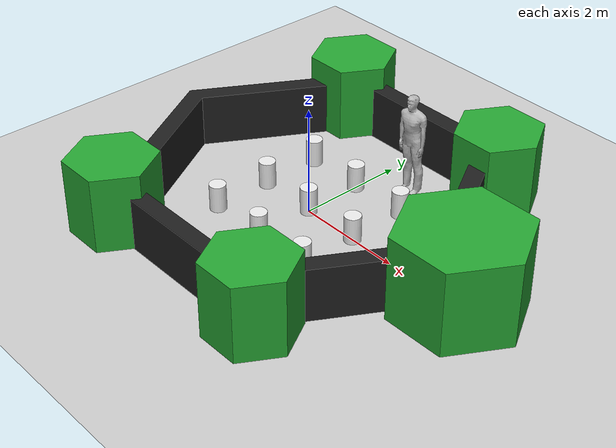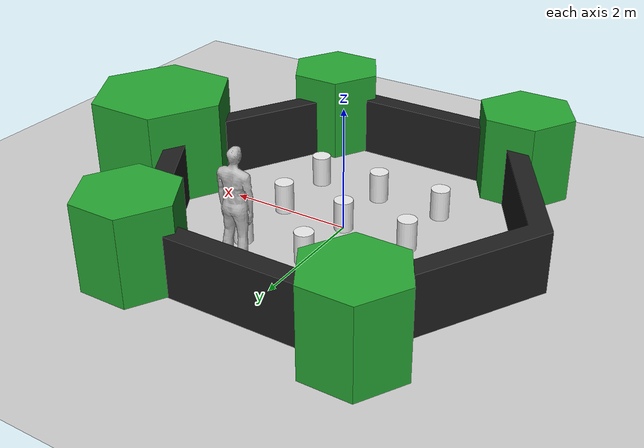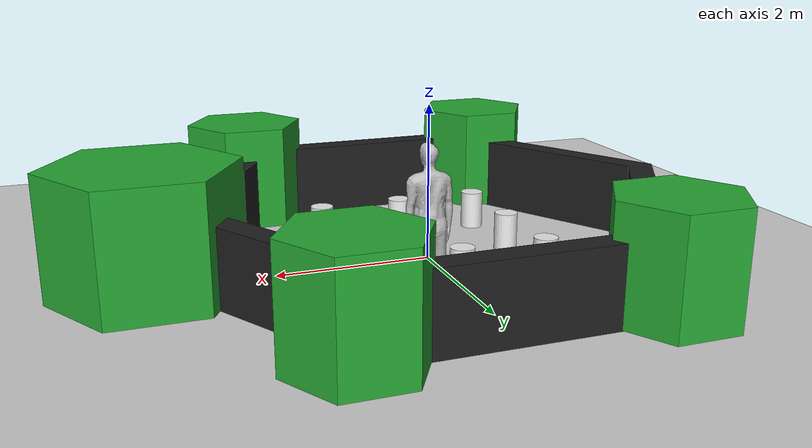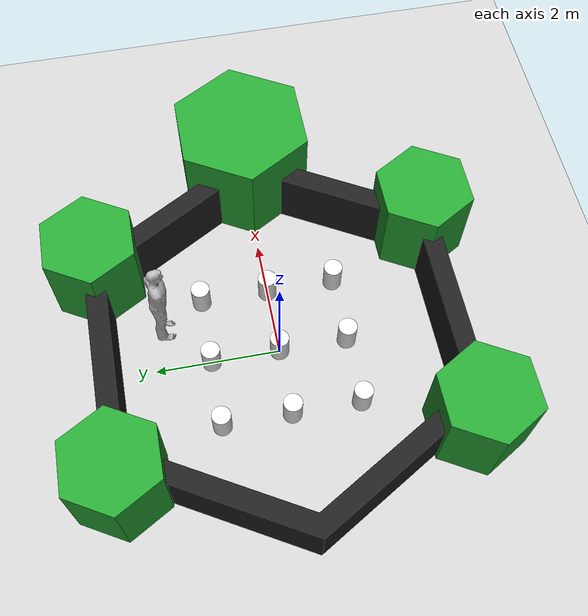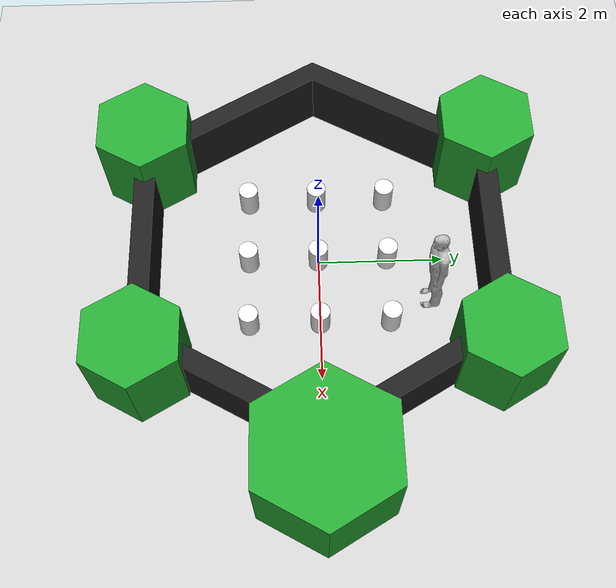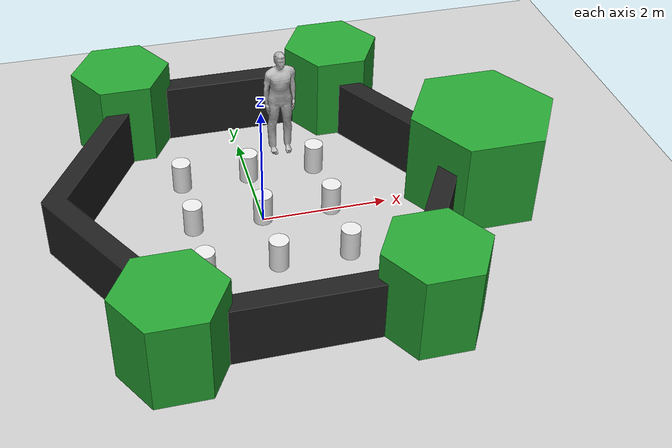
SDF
<sdf version="1.6">
 <world name="default">
  <light name="sun" type="directional">
   <pose>0 0 10 0 -0 0</pose>
   <diffuse>0.8 0.8 0.8 1</diffuse>
   <specular>0.2 0.2 0.2 1</specular>
   <attenuation>
    <range>1000</range>
    <constant>0.9</constant>
    <linear>0.01</linear>
    <quadratic>0.001</quadratic>
   </attenuation>
   <direction>-0.5 0.1 -0.9</direction>
  </light>
  <model name="ground_plane">
   <static>1</static>
   <link name="link">
    <collision name="collision">
     <geometry><plane><normal>0 0 1</normal><size>100 100</size></plane></geometry>
     <surface><friction><ode><mu>100</mu><mu2>50</mu2></ode></friction></surface>
    </collision>
    <visual name="visual">
     <cast_shadows>0</cast_shadows>
     <geometry><plane><normal>0 0 1</normal><size>100 100</size></plane></geometry>
     <material>
      <script><uri>file://media/materials/scripts/gazebo.material</uri><name>Gazebo/Grey</name></script>
     </material>
    </visual>
   </link>
  </model>
  <physics name="default_physics" default="0" type="ode">
   <real_time_update_rate>1000</real_time_update_rate>
   <max_step_size>0.001</max_step_size>
   <real_time_factor>1</real_time_factor>
   <ode>
    <solver>
     <type>quick</type>
     <iters>150</iters>
     <precon_iters>0</precon_iters>
     <sor>1.4</sor>
     <use_dynamic_moi_rescaling>1</use_dynamic_moi_rescaling>
    </solver>
    <constraints>
     <cfm>1e-05</cfm>
     <erp>0.2</erp>
     <contact_max_correcting_vel>2000</contact_max_correcting_vel>
     <contact_surface_layer>0.01</contact_surface_layer>
    </constraints>
   </ode>
  </physics>
  <model name="ros_symbol">
   <static>1</static>
   <link name="symbol">
    <collision name="one_one">
     <pose>-1.1 -1.1 0.25 0 -0 0</pose>
     <geometry><cylinder><radius>0.15</radius><length>0.5</length></cylinder></geometry>
    </collision>
    <visual name="one_one">
     <pose>-1.1 -1.1 0.25 0 -0 0</pose>
     <geometry><cylinder><radius>0.15</radius><length>0.5</length></cylinder></geometry>
     <material>
      <script><uri>file://media/materials/scripts/gazebo.material</uri><name>Gazebo/White</name></script>
     </material>
    </visual>
    <collision name="one_two">
     <pose>-1.1 0 0.25 0 -0 0</pose>
     <geometry><cylinder><radius>0.15</radius><length>0.5</length></cylinder></geometry>
    </collision>
    <visual name="one_two">
     <pose>-1.1 0 0.25 0 -0 0</pose>
     <geometry><cylinder><radius>0.15</radius><length>0.5</length></cylinder></geometry>
     <material>
      <script><uri>file://media/materials/scripts/gazebo.material</uri><name>Gazebo/White</name></script>
     </material>
    </visual>
    <collision name="one_three">
     <pose>-1.1 1.1 0.25 0 -0 0</pose>
     <geometry><cylinder><radius>0.15</radius><length>0.5</length></cylinder></geometry>
    </collision>
    <visual name="one_three">
     <pose>-1.1 1.1 0.25 0 -0 0</pose>
     <geometry><cylinder><radius>0.15</radius><length>0.5</length></cylinder></geometry>
     <material>
      <script><uri>file://media/materials/scripts/gazebo.material</uri><name>Gazebo/White</name></script>
     </material>
    </visual>
    <collision name="two_one">
     <pose>0 -1.1 0.25 0 -0 0</pose>
     <geometry><cylinder><radius>0.15</radius><length>0.5</length></cylinder></geometry>
    </collision>
    <visual name="two_one">
     <pose>0 -1.1 0.25 0 -0 0</pose>
     <geometry><cylinder><radius>0.15</radius><length>0.5</length></cylinder></geometry>
     <material>
      <script><uri>file://media/materials/scripts/gazebo.material</uri><name>Gazebo/White</name></script>
     </material>
    </visual>
    <collision name="two_two">
     <pose>0 0 0.25 0 -0 0</pose>
     <geometry><cylinder><radius>0.15</radius><length>0.5</length></cylinder></geometry>
    </collision>
    <visual name="two_two">
     <pose>0 0 0.25 0 -0 0</pose>
     <geometry><cylinder><radius>0.15</radius><length>0.5</length></cylinder></geometry>
     <material>
      <script><uri>file://media/materials/scripts/gazebo.material</uri><name>Gazebo/White</name></script>
     </material>
    </visual>
    <collision name="two_three">
     <pose>0 1.1 0.25 0 -0 0</pose>
     <geometry><cylinder><radius>0.15</radius><length>0.5</length></cylinder></geometry>
    </collision>
    <visual name="two_three">
     <pose>0 1.1 0.25 0 -0 0</pose>
     <geometry><cylinder><radius>0.15</radius><length>0.5</length></cylinder></geometry>
     <material>
      <script><uri>file://media/materials/scripts/gazebo.material</uri><name>Gazebo/White</name></script>
     </material>
    </visual>
    <collision name="three_one">
     <pose>1.1 -1.1 0.25 0 -0 0</pose>
     <geometry><cylinder><radius>0.15</radius><length>0.5</length></cylinder></geometry>
    </collision>
    <visual name="three_one">
     <pose>1.1 -1.1 0.25 0 -0 0</pose>
     <geometry><cylinder><radius>0.15</radius><length>0.5</length></cylinder></geometry>
     <material>
      <script><uri>file://media/materials/scripts/gazebo.material</uri><name>Gazebo/White</name></script>
     </material>
    </visual>
    <collision name="three_two">
     <pose>1.1 0 0.25 0 -0 0</pose>
     <geometry><cylinder><radius>0.15</radius><length>0.5</length></cylinder></geometry>
    </collision>
    <visual name="three_two">
     <pose>1.1 0 0.25 0 -0 0</pose>
     <geometry><cylinder><radius>0.15</radius><length>0.5</length></cylinder></geometry>
     <material>
      <script><uri>file://media/materials/scripts/gazebo.material</uri><name>Gazebo/White</name></script>
     </material>
    </visual>
    <collision name="three_three">
     <pose>1.1 1.1 0.25 0 -0 0</pose>
     <geometry><cylinder><radius>0.15</radius><length>0.5</length></cylinder></geometry>
    </collision>
    <visual name="three_three">
     <pose>1.1 1.1 0.25 0 -0 0</pose>
     <geometry><cylinder><radius>0.15</radius><length>0.5</length></cylinder></geometry>
     <material>
      <script><uri>file://media/materials/scripts/gazebo.material</uri><name>Gazebo/White</name></script>
     </material>
    </visual>
    <collision name="head">
     <pose>3.5 0 -0.5 0 -0 0</pose>
     <geometry>
      <mesh><uri>model://turtlebot3_world/meshes/hexagon.dae</uri><scale>0.8 0.8 0.8</scale></mesh>
     </geometry>
    </collision>
    <visual name="head">
     <pose>3.5 0 -0.5 0 -0 0</pose>
     <geometry>
      <mesh><uri>model://turtlebot3_world/meshes/hexagon.dae</uri><scale>0.8 0.8 0.8</scale></mesh>
     </geometry>
     <material>
      <script><uri>file://media/materials/scripts/gazebo.material</uri><name>Gazebo/Green</name></script>
     </material>
    </visual>
    <collision name="left_hand">
     <pose>1.8 2.7 0 0 -0 0</pose>
     <geometry>
      <mesh><uri>model://turtlebot3_world/meshes/hexagon.dae</uri><scale>0.55 0.55 0.55</scale></mesh>
     </geometry>
    </collision>
    <visual name="left_hand">
     <pose>1.8 2.7 0 0 -0 0</pose>
     <geometry>
      <mesh><uri>model://turtlebot3_world/meshes/hexagon.dae</uri><scale>0.55 0.55 0.55</scale></mesh>
     </geometry>
     <material>
      <script><uri>file://media/materials/scripts/gazebo.material</uri><name>Gazebo/Green</name></script>
     </material>
    </visual>
    <collision name="right_hand">
     <pose>1.8 -2.7 0 0 -0 0</pose>
     <geometry>
      <mesh><uri>model://turtlebot3_world/meshes/hexagon.dae</uri><scale>0.55 0.55 0.55</scale></mesh>
     </geometry>
    </collision>
    <visual name="right_hand">
     <pose>1.8 -2.7 0 0 -0 0</pose>
     <geometry>
      <mesh><uri>model://turtlebot3_world/meshes/hexagon.dae</uri><scale>0.55 0.55 0.55</scale></mesh>
     </geometry>
     <material>
      <script><uri>file://media/materials/scripts/gazebo.material</uri><name>Gazebo/Green</name></script>
     </material>
    </visual>
    <collision name="left_foot">
     <pose>-1.8 2.7 0 0 -0 0</pose>
     <geometry>
      <mesh><uri>model://turtlebot3_world/meshes/hexagon.dae</uri><scale>0.55 0.55 0.55</scale></mesh>
     </geometry>
    </collision>
    <visual name="left_foot">
     <pose>-1.8 2.7 0 0 -0 0</pose>
     <geometry>
      <mesh><uri>model://turtlebot3_world/meshes/hexagon.dae</uri><scale>0.55 0.55 0.55</scale></mesh>
     </geometry>
     <material>
      <script><uri>file://media/materials/scripts/gazebo.material</uri><name>Gazebo/Green</name></script>
     </material>
    </visual>
    <collision name="right_foot">
     <pose>-1.8 -2.7 0 0 -0 0</pose>
     <geometry>
      <mesh><uri>model://turtlebot3_world/meshes/hexagon.dae</uri><scale>0.55 0.55 0.55</scale></mesh>
     </geometry>
    </collision>
    <visual name="right_foot">
     <pose>-1.8 -2.7 0 0 -0 0</pose>
     <geometry>
      <mesh><uri>model://turtlebot3_world/meshes/hexagon.dae</uri><scale>0.55 0.55 0.55</scale></mesh>
     </geometry>
     <material>
      <script><uri>file://media/materials/scripts/gazebo.material</uri><name>Gazebo/Green</name></script>
     </material>
    </visual>
    <collision name="body">
     <pose>0 0 -0.3 0 0 -1.5708</pose>
     <geometry>
      <mesh><uri>model://turtlebot3_world/meshes/wall.dae</uri><scale>0.25 0.25 0.25</scale></mesh>
     </geometry>
    </collision>
    <visual name="body">
     <pose>0 0 -0.3 0 0 -1.5708</pose>
     <geometry>
      <mesh><uri>model://turtlebot3_world/meshes/wall.dae</uri><scale>0.25 0.25 0.25</scale></mesh>
     </geometry>
     <material>
      <script><uri>file://media/materials/scripts/gazebo.material</uri><name>Gazebo/FlatBlack</name></script>
     </material>
    </visual>
   </link>
  </model>
  <scene><ambient>0.4 0.4 0.4 1</ambient><background>0.7 0.7 0.7 1</background><shadows>1</shadows></scene>
  <gravity>0 0 -9.8</gravity>
  <magnetic_field>6e-06 2.3e-05 -4.2e-05</magnetic_field>
  <atmosphere type="adiabatic"/>
  <audio><device>default</device></audio>
  <spherical_coordinates>
   <surface_model>EARTH_WGS84</surface_model>
   <latitude_deg>0</latitude_deg>
   <longitude_deg>0</longitude_deg>
   <elevation>0</elevation>
   <heading_deg>0</heading_deg>
  </spherical_coordinates>
  <model name="person_standing">
   <link name="link">
    <inertial>
     <pose>0 -0.1 0.95 0 -0 0</pose>
     <mass>80</mass>
     <inertia><ixx>24.88</ixx><ixy>0</ixy><ixz>0</ixz><iyy>25.73</iyy><iyz>0</iyz><izz>2.48</izz></inertia>
    </inertial>
    <collision name="bottom">
     <pose>0 -0.1 0.01 0 -0 0</pose>
     <geometry><box><size>0.5 0.35 0.02</size></box></geometry>
    </collision>
    <collision name="person">
     <pose>0 0 0.02 0.04 -0 0</pose>
     <geometry><mesh><uri>model://person_standing/meshes/standing.dae</uri></mesh></geometry>
    </collision>
    <visual name="visual">
     <pose>0 0 0.02 0.04 -0 0</pose>
     <geometry><mesh><uri>model://person_standing/meshes/standing.dae</uri></mesh></geometry>
    </visual>
   </link>
   <pose>0.689148 1.83955 -0 1e-06 -1e-06 -9.8e-05</pose>
  </model>
 </world>
</sdf>
